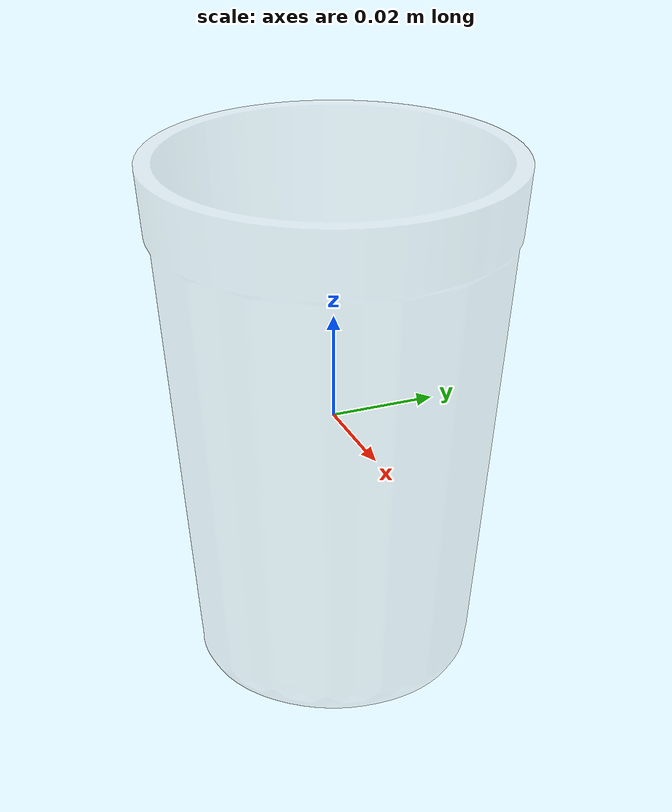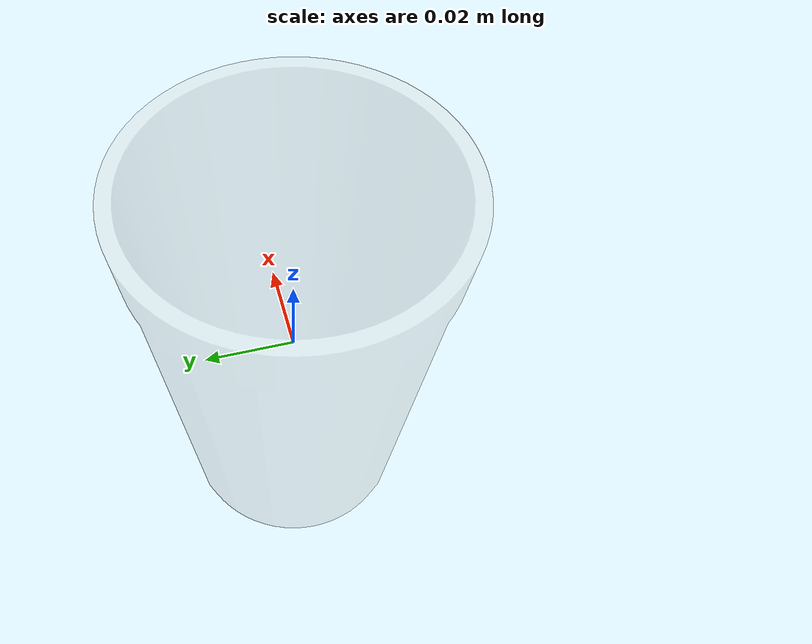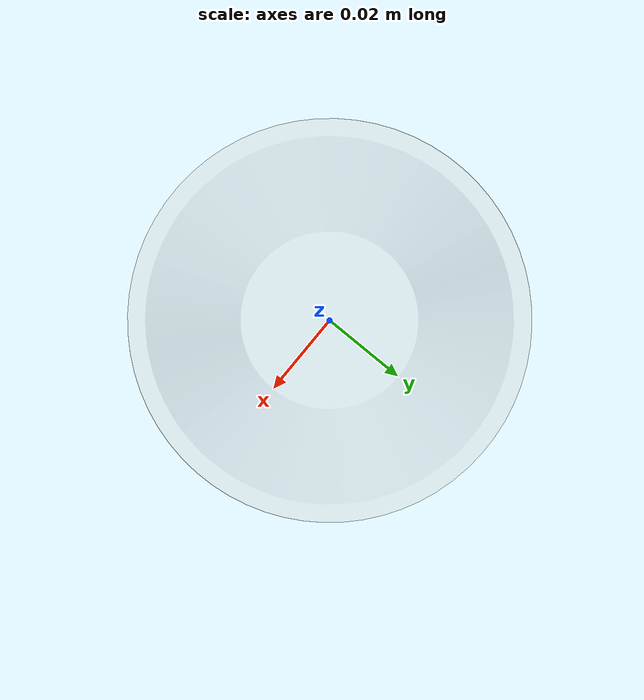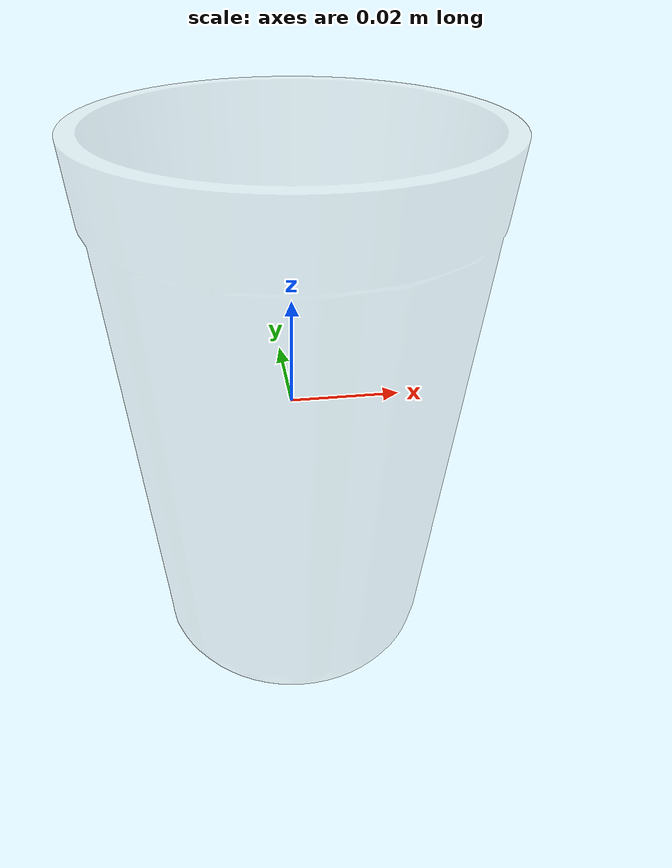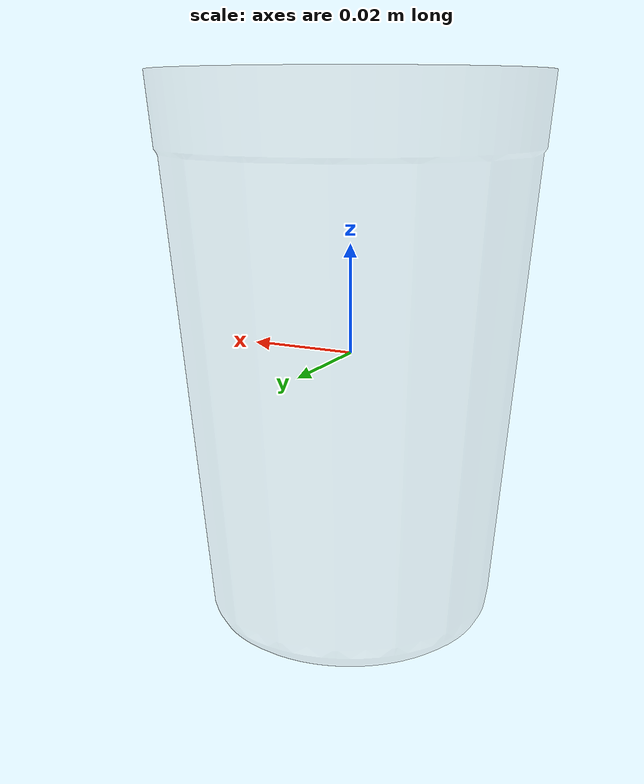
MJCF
<mujoco model="model">
  <option timestep="0.002" gravity="0.0 0.0 -9.81"/>
  <compiler angle="radian"/>
  <asset>
    <mesh file="visual/Clear.obj" name="GlassCup022_Clear_vis"/>
    <texture file="visual/T_BC001.png" name="GlassCup022_Clear_material" type="2d"/>
    <material name="GlassCup022_Clear_material" rgba="1 1 1 0.20000000298023224" texture="GlassCup022_Clear_material" shininess="0.4472135901451111" specular="0.3103448502657381"/>
    <mesh file="collision/collision_mesh_collision_0.obj" name="GlassCup022_collision_mesh_0"/>
    <mesh file="collision/collision_mesh_collision_1.obj" name="GlassCup022_collision_mesh_1"/>
    <mesh file="collision/collision_mesh_collision_2.obj" name="GlassCup022_collision_mesh_2"/>
    <mesh file="collision/collision_mesh_collision_3.obj" name="GlassCup022_collision_mesh_3"/>
    <mesh file="collision/collision_mesh_collision_4.obj" name="GlassCup022_collision_mesh_4"/>
    <mesh file="collision/collision_mesh_collision_5.obj" name="GlassCup022_collision_mesh_5"/>
    <mesh file="collision/collision_mesh_collision_6.obj" name="GlassCup022_collision_mesh_6"/>
    <mesh file="collision/collision_mesh_collision_7.obj" name="GlassCup022_collision_mesh_7"/>
    <mesh file="collision/collision_mesh_collision_8.obj" name="GlassCup022_collision_mesh_8"/>
    <mesh file="collision/collision_mesh_collision_9.obj" name="GlassCup022_collision_mesh_9"/>
    <mesh file="collision/collision_mesh_collision_10.obj" name="GlassCup022_collision_mesh_10"/>
    <mesh file="collision/collision_mesh_collision_11.obj" name="GlassCup022_collision_mesh_11"/>
    <mesh file="collision/collision_mesh_collision_12.obj" name="GlassCup022_collision_mesh_12"/>
    <mesh file="collision/collision_mesh_collision_13.obj" name="GlassCup022_collision_mesh_13"/>
  </asset>
  <default>
    <default class="visual">
      <geom conaffinity="0" contype="0" group="1" type="mesh"/>
    </default>
    <default class="collision">
      <geom group="3" rgba="0.5 0 0 0.5" density="1000.0"/>
    </default>
    <default class="spawn">
      <geom group="0" rgba="1 1 1 0.5" contype="0" conaffinity="0"/>
      <site group="0" rgba="1 1 1 0.5"/>
    </default>
    <default class="region">
      <geom group="1" conaffinity="0" contype="0" rgba="0 1 0 0" mass="0"/>
    </default>
  </default>
  <worldbody>
    <body>
      <body name="object">
        <geom mesh="GlassCup022_Clear_vis" type="mesh" solimp="0.998 0.998 0.001" solref="0.001 1" friction="0.95 0.3 0.1" class="visual" material="GlassCup022_Clear_material"/>
        <geom mesh="GlassCup022_collision_mesh_0" type="mesh" class="collision"/>
        <geom mesh="GlassCup022_collision_mesh_1" type="mesh" class="collision"/>
        <geom mesh="GlassCup022_collision_mesh_2" type="mesh" class="collision"/>
        <geom mesh="GlassCup022_collision_mesh_3" type="mesh" class="collision"/>
        <geom mesh="GlassCup022_collision_mesh_4" type="mesh" class="collision"/>
        <geom mesh="GlassCup022_collision_mesh_5" type="mesh" class="collision"/>
        <geom mesh="GlassCup022_collision_mesh_6" type="mesh" class="collision"/>
        <geom mesh="GlassCup022_collision_mesh_7" type="mesh" class="collision"/>
        <geom mesh="GlassCup022_collision_mesh_8" type="mesh" class="collision"/>
        <geom mesh="GlassCup022_collision_mesh_9" type="mesh" class="collision"/>
        <geom mesh="GlassCup022_collision_mesh_10" type="mesh" class="collision"/>
        <geom mesh="GlassCup022_collision_mesh_11" type="mesh" class="collision"/>
        <geom mesh="GlassCup022_collision_mesh_12" type="mesh" class="collision"/>
        <geom mesh="GlassCup022_collision_mesh_13" type="mesh" class="collision"/>
        <geom class="region" name="reg_bbox" type="box" pos="1.564999999998512e-06 -1.7450000000009125e-06 0.0" size="0.034980435000000004 0.034980255 0.05"/>
        <geom class="region" name="liquid" type="cylinder" rgba="0 0 0 0" size="0.026 0.02" pos="0.000002 0.000000 -0.0225"/>
        <geom class="region" name="reg_int" type="cylinder" rgba="0 0 0 0" size="0.024 0.05" pos="0.000002 0.000000 0.007"/>
      </body>
    </body>
  </worldbody>
  <actuator/>
</mujoco>
